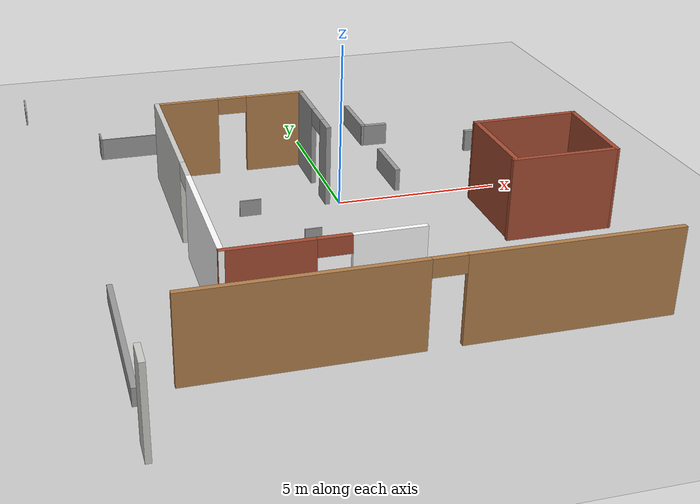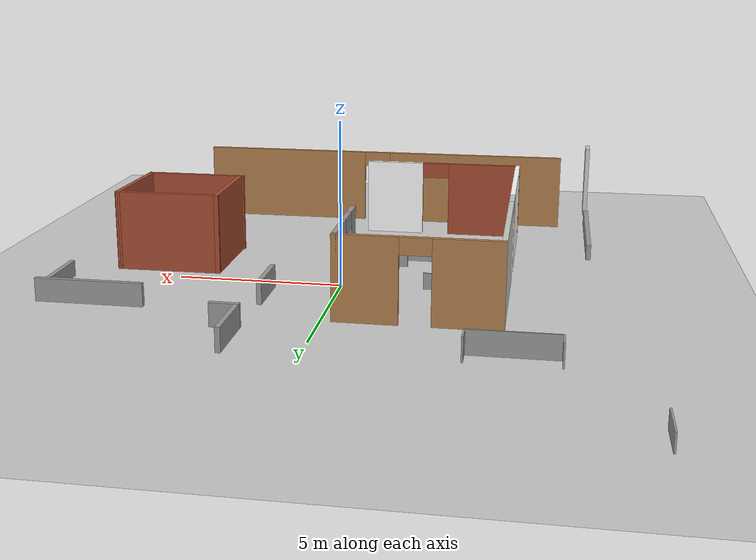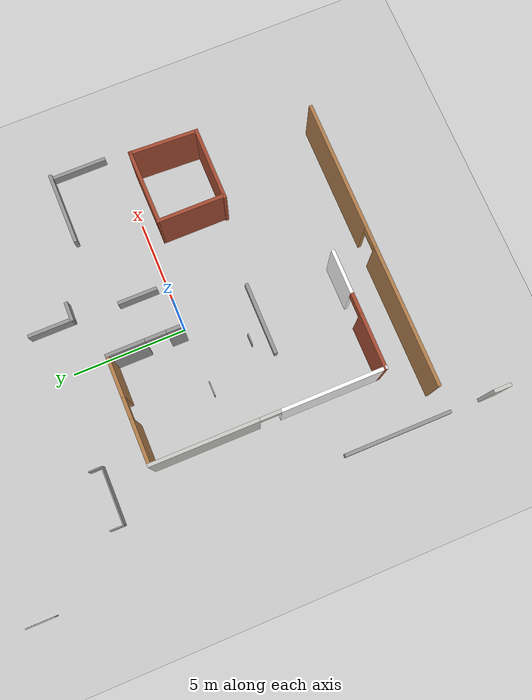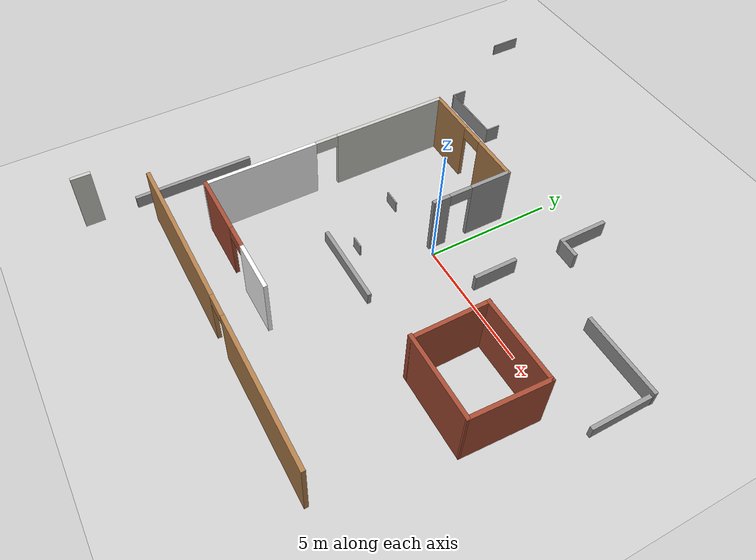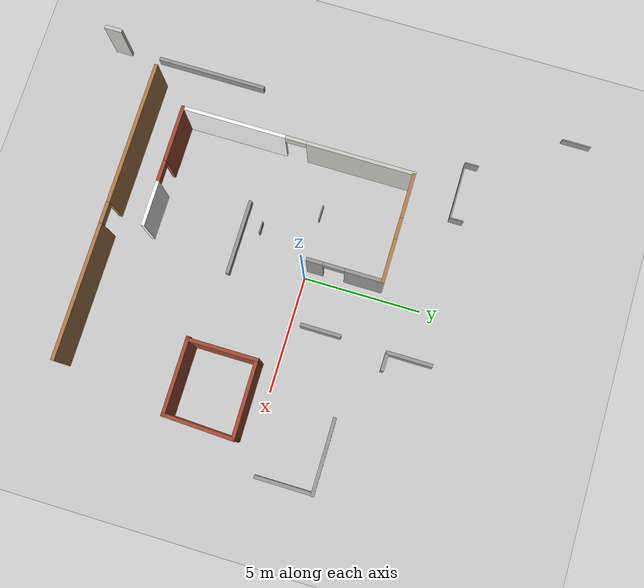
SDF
<sdf version="1.4">
 <world name="default">
  <scene>
   <ambient>0.68 0.68 0.68 1.0</ambient>
   <shadows>false</shadows>
   <sky><clouds><speed>12</speed></clouds></sky>
  </scene>
  <physics type="ode">
   <max_step_size>0.001</max_step_size>
   <real_time_factor>1</real_time_factor>
   <real_time_update_rate>1000</real_time_update_rate>
   <gravity>0 0 -9.8</gravity>
  </physics>
  <include><uri>model://sun</uri></include>
  <include><uri>model://ISCAS_groundplane</uri></include>
  <include><uri>model://academy_wall</uri></include>
  <include><uri>model://add_wall</uri></include>
  <include><uri>model://add_wall2</uri></include>
  <include><uri>model://add_wall4</uri></include>
  <include><uri>model://add_wall5</uri></include>
  <include><uri>model://add_wall6</uri></include>
  <include><uri>model://add_wall7</uri></include>
 </world>
</sdf>

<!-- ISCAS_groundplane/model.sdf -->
<sdf version="1.4">
  <model name="ISCAS_groundplane">
    <static>true</static>
    <link name="link">
      <collision name="collision">
        <geometry>
          <plane>
            <normal>0 0 1</normal>
            <size>50 50</size>
          </plane>
        </geometry>
        <surface>
          <friction>
            <ode>
              <mu>100</mu>
              <mu2>50</mu2>
            </ode>
          </friction>
        </surface>
      </collision>
      <visual name="visual">
        <cast_shadows>false</cast_shadows>
        <geometry>
          <plane>
            <normal>0 0 1</normal>
            <size>50 50</size>
          </plane>
        </geometry>
        <material>
          <script>
            <uri>model://ISCAS_groundplane/materials/scripts</uri>
            <uri>model://ISCAS_groundplane/materials/textures</uri>
            <name>ISCAS_groundplane/Image </name>
          </script>
        </material>
      </visual>
    </link>
  </model>
</sdf>

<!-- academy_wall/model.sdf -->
<sdf version='1.7'>
  <model name='academy_wall'>
    <pose>0.406534 -4.1875 0 0 -0 0</pose>
    <link name='Wall_2'>
      <collision name='Wall_2_Collision'>
        <geometry>
          <box>
            <size>3.25 0.15 2.5</size>
          </box>
        </geometry>
        <pose>0 0 1.25 0 -0 0</pose>
      </collision>
      <visual name='Wall_2_Visual'>
        <pose>0 0 1.25 0 -0 0</pose>
        <geometry>
          <box>
            <size>3.25 0.15 2.5</size>
          </box>
        </geometry>
        <material>
          <script>
            <uri>file://media/materials/scripts/gazebo.material</uri>
            <name>Gazebo/Bricks</name>
          </script>
          <ambient>1 1 1 1</ambient>
        </material>
        <meta>
          <layer>0</layer>
        </meta>
      </visual>
      <pose>5.10347 0.6775 0 0 -0 0</pose>
    </link>
    <link name='Wall_3'>
      <collision name='Wall_3_Collision'>
        <geometry>
          <box>
            <size>3.02251 0.15 2.5</size>
          </box>
        </geometry>
        <pose>0 0 1.25 0 -0 0</pose>
      </collision>
      <visual name='Wall_3_Visual'>
        <pose>0 0 1.25 0 -0 0</pose>
        <geometry>
          <box>
            <size>3.02251 0.15 2.5</size>
          </box>
        </geometry>
        <material>
          <script>
            <uri>file://media/materials/scripts/gazebo.material</uri>
            <name>Gazebo/Bricks</name>
          </script>
          <ambient>1 1 1 1</ambient>
        </material>
        <meta>
          <layer>0</layer>
        </meta>
      </visual>
      <pose>6.71347 2.1125 0 0 -0 1.52901</pose>
    </link>
    <link name='Wall_4'>
      <collision name='Wall_4_Collision'>
        <geometry>
          <box>
            <size>3.31014 0.15 2.5</size>
          </box>
        </geometry>
        <pose>0 0 1.25 0 -0 0</pose>
      </collision>
      <visual name='Wall_4_Visual'>
        <pose>0 0 1.25 0 -0 0</pose>
        <geometry>
          <box>
            <size>3.31014 0.15 2.5</size>
          </box>
        </geometry>
        <material>
          <script>
            <uri>file://media/materials/scripts/gazebo.material</uri>
            <name>Gazebo/Bricks</name>
          </script>
          <ambient>1 1 1 1</ambient>
        </material>
        <meta>
          <layer>0</layer>
        </meta>
      </visual>
      <pose>5.18347 3.5325 0 0 -0 -3.1321</pose>
    </link>
    <link name='Wall_5'>
      <collision name='Wall_5_Collision'>
        <geometry>
          <box>
            <size>3 0.15 2.5</size>
          </box>
        </geometry>
        <pose>0 0 1.25 0 -0 0</pose>
      </collision>
      <visual name='Wall_5_Visual'>
        <pose>0 0 1.25 0 -0 0</pose>
        <geometry>
          <box>
            <size>3 0.15 2.5</size>
          </box>
        </geometry>
        <material>
          <script>
            <uri>file://media/materials/scripts/gazebo.material</uri>
            <name>Gazebo/Bricks</name>
          </script>
          <ambient>1 1 1 1</ambient>
        </material>
        <meta>
          <layer>0</layer>
        </meta>
      </visual>
      <pose>3.60347 2.1025 0 0 -0 -1.5708</pose>
    </link>
    <link name='Wall_9'>
      <pose>-0.476534 -4.1125 0 0 -0 0</pose>
      <visual name='Wall_9_Visual_0'>
        <pose>-3.3175 0 1.25 0 -0 0</pose>
        <geometry>
          <box>
            <size>6.115 0.15 2.5</size>
          </box>
        </geometry>
        <material>
          <script>
            <uri>file://media/materials/scripts/gazebo.material</uri>
            <name>Gazebo/Wood</name>
          </script>
          <ambient>1 1 1 1</ambient>
        </material>
        <meta>
          <layer>0</layer>
        </meta>
      </visual>
      <collision name='Wall_9_Collision_0'>
        <geometry>
          <box>
            <size>6.115 0.15 2.5</size>
          </box>
        </geometry>
        <pose>-3.3175 0 1.25 0 -0 0</pose>
      </collision>
      <visual name='Wall_9_Visual_1'>
        <pose>3.5075 0 1.25 0 -0 0</pose>
        <geometry>
          <box>
            <size>5.735 0.15 2.5</size>
          </box>
        </geometry>
        <material>
          <script>
            <uri>file://media/materials/scripts/gazebo.material</uri>
            <name>Gazebo/Wood</name>
          </script>
          <ambient>1 1 1 1</ambient>
        </material>
        <meta>
          <layer>0</layer>
        </meta>
      </visual>
      <collision name='Wall_9_Collision_1'>
        <geometry>
          <box>
            <size>5.735 0.15 2.5</size>
          </box>
        </geometry>
        <pose>3.5075 0 1.25 0 -0 0</pose>
      </collision>
      <visual name='Wall_9_Visual_2'>
        <pose>0.19 0 2.25 0 -0 0</pose>
        <geometry>
          <box>
            <size>0.9 0.15 0.5</size>
          </box>
        </geometry>
        <material>
          <script>
            <uri>file://media/materials/scripts/gazebo.material</uri>
            <name>Gazebo/Wood</name>
          </script>
          <ambient>1 1 1 1</ambient>
        </material>
        <meta>
          <layer>0</layer>
        </meta>
      </visual>
      <collision name='Wall_9_Collision_2'>
        <geometry>
          <box>
            <size>0.9 0.15 0.5</size>
          </box>
        </geometry>
        <pose>0.19 0 2.25 0 -0 0</pose>
      </collision>
    </link>
    <static>1</static>
  </model>
</sdf>

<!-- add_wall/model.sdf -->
<sdf version='1.7'>
  <model name='add_wall'>
    <pose>-3.7525 -5.4475 0 0 -0 0</pose>
    <link name='Wall_2'>
      <collision name='Wall_2_Collision'>
        <geometry>
          <box>
            <size>0.75 0.15 2.5</size>
          </box>
        </geometry>
        <pose>0 0 1.25 0 -0 0</pose>
      </collision>
      <visual name='Wall_2_Visual'>
        <pose>0 0 1.25 0 -0 0</pose>
        <geometry>
          <box>
            <size>0.75 0.15 2.5</size>
          </box>
        </geometry>
        <material>
          <script>
            <uri>file://media/materials/scripts/gazebo.material</uri>
            <name>Gazebo/CeilingTiled</name>
          </script>
          <ambient>1 1 1 1</ambient>
        </material>
        <meta>
          <layer>0</layer>
        </meta>
      </visual>
      <pose>-3.6775 -5.0725 0 0 -0 -1.5708</pose>
    </link>
    <static>1</static>
  </model>
</sdf>

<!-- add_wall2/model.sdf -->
<sdf version='1.7'>
  <model name='add_wall2'>
    <pose>-2.43 -1.735 0 0 -0 0</pose>
    <link name='Wall_3'>
      <pose>0 -4.925 0 0 -0 3.14159</pose>
      <visual name='Wall_3_Visual_0'>
        <pose>-1.66285 0 1.25 0 -0 0</pose>
        <geometry>
          <box>
            <size>1.92429 0.15 2.5</size>
          </box>
        </geometry>
        <material>
          <script>
            <uri>model://add_wall2/materials/scripts</uri>
            <uri>model://add_wall2/materials/textures</uri>
            <name>add_wall2/Image </name>
          </script>
          <ambient>1 1 1 1</ambient>
        </material>
        <meta>
          <layer>0</layer>
        </meta>
      </visual>
      <collision name='Wall_3_Collision_0'>
        <geometry>
          <box>
            <size>1.92429 0.15 2.5</size>
          </box>
        </geometry>
        <pose>-1.66285 0 1.25 0 -0 0</pose>
      </collision>
      <visual name='Wall_3_Visual_1'>
        <pose>1.41215 0 1.25 0 -0 0</pose>
        <geometry>
          <box>
            <size>2.42571 0.15 2.5</size>
          </box>
        </geometry>
        <material>
          <script>
            <uri>file://media/materials/scripts/gazebo.material</uri>
            <name>Gazebo/Bricks</name>
          </script>
          <ambient>1 1 1 1</ambient>
        </material>
        <meta>
          <layer>0</layer>
        </meta>
      </visual>
      <collision name='Wall_3_Collision_1'>
        <geometry>
          <box>
            <size>2.42571 0.15 2.5</size>
          </box>
        </geometry>
        <pose>1.41215 0 1.25 0 -0 0</pose>
      </collision>
      <visual name='Wall_3_Visual_2'>
        <pose>-0.250708 0 2.25 0 -0 0</pose>
        <geometry>
          <box>
            <size>0.9 0.15 0.5</size>
          </box>
        </geometry>
        <material>
          <script>
            <uri>file://media/materials/scripts/gazebo.material</uri>
            <name>Gazebo/Bricks</name>
          </script>
          <ambient>1 1 1 1</ambient>
        </material>
        <meta>
          <layer>0</layer>
        </meta>
      </visual>
      <collision name='Wall_3_Collision_2'>
        <geometry>
          <box>
            <size>0.9 0.15 0.5</size>
          </box>
        </geometry>
        <pose>-0.250708 0 2.25 0 -0 0</pose>
      </collision>
    </link>
    <link name='Wall_4'>
      <pose>-2.55 0 0 0 -0 1.5708</pose>
      <visual name='Wall_4_Visual_0'>
        <pose>-2.76483 0 1.25 0 -0 0</pose>
        <geometry>
          <box>
            <size>4.47035 0.15 2.5</size>
          </box>
        </geometry>
        <material>
          <script>
            <uri>model://add_wall2/materials/scripts</uri>
            <uri>model://add_wall2/materials/textures</uri>
            <name>horse/Image </name>
          </script>
          <ambient>1 1 1 1</ambient>
        </material>
        <meta>
          <layer>0</layer>
        </meta>
      </visual>
      <collision name='Wall_4_Collision_0'>
        <geometry>
          <box>
            <size>4.47035 0.15 2.5</size>
          </box>
        </geometry>
        <pose>-2.76483 0 1.25 0 -0 0</pose>
      </collision>
      <visual name='Wall_4_Visual_1'>
        <pose>2.68517 0 1.25 0 -0 0</pose>
        <geometry>
          <box>
            <size>4.62965 0.15 2.5</size>
          </box>
        </geometry>
        <material>
          <script>
            <uri>file://media/materials/scripts/gazebo.material</uri>
            <name>Gazebo/CeilingTiled</name>
          </script>
          <ambient>1 1 1 1</ambient>
        </material>
        <meta>
          <layer>0</layer>
        </meta>
      </visual>
      <collision name='Wall_4_Collision_1'>
        <geometry>
          <box>
            <size>4.62965 0.15 2.5</size>
          </box>
        </geometry>
        <pose>2.68517 0 1.25 0 -0 0</pose>
      </collision>
      <visual name='Wall_4_Visual_2'>
        <pose>-0.079655 0 2.25 0 -0 0</pose>
        <geometry>
          <box>
            <size>0.9 0.15 0.5</size>
          </box>
        </geometry>
        <material>
          <script>
            <uri>file://media/materials/scripts/gazebo.material</uri>
            <name>Gazebo/CeilingTiled</name>
          </script>
          <ambient>1 1 1 1</ambient>
        </material>
        <meta>
          <layer>0</layer>
        </meta>
      </visual>
      <collision name='Wall_4_Collision_2'>
        <geometry>
          <box>
            <size>0.9 0.15 0.5</size>
          </box>
        </geometry>
        <pose>-0.079655 0 2.25 0 -0 0</pose>
      </collision>
    </link>
    <link name='Wall_5'>
      <pose>-0.25 4.925 0 0 -0 0</pose>
      <visual name='Wall_5_Visual_0'>
        <pose>-1.38036 0 1.25 0 -0 0</pose>
        <geometry>
          <box>
            <size>1.98928 0.15 2.5</size>
          </box>
        </geometry>
        <material>
          <script>
            <uri>file://media/materials/scripts/gazebo.material</uri>
            <name>Gazebo/Wood</name>
          </script>
          <ambient>1 1 1 1</ambient>
        </material>
        <meta>
          <layer>0</layer>
        </meta>
      </visual>
      <collision name='Wall_5_Collision_0'>
        <geometry>
          <box>
            <size>1.98928 0.15 2.5</size>
          </box>
        </geometry>
        <pose>-1.38036 0 1.25 0 -0 0</pose>
      </collision>
      <visual name='Wall_5_Visual_1'>
        <pose>1.44464 0 1.25 0 -0 0</pose>
        <geometry>
          <box>
            <size>1.86072 0.15 2.5</size>
          </box>
        </geometry>
        <material>
          <script>
            <uri>file://media/materials/scripts/gazebo.material</uri>
            <name>Gazebo/Wood</name>
          </script>
          <ambient>1 1 1 1</ambient>
        </material>
        <meta>
          <layer>0</layer>
        </meta>
      </visual>
      <collision name='Wall_5_Collision_1'>
        <geometry>
          <box>
            <size>1.86072 0.15 2.5</size>
          </box>
        </geometry>
        <pose>1.44464 0 1.25 0 -0 0</pose>
      </collision>
      <visual name='Wall_5_Visual_2'>
        <pose>0.064283 0 2.25 0 -0 0</pose>
        <geometry>
          <box>
            <size>0.9 0.15 0.5</size>
          </box>
        </geometry>
        <material>
          <script>
            <uri>file://media/materials/scripts/gazebo.material</uri>
            <name>Gazebo/Wood</name>
          </script>
          <ambient>1 1 1 1</ambient>
        </material>
        <meta>
          <layer>0</layer>
        </meta>
      </visual>
      <collision name='Wall_5_Collision_2'>
        <geometry>
          <box>
            <size>0.9 0.15 0.5</size>
          </box>
        </geometry>
        <pose>0.064283 0 2.25 0 -0 0</pose>
      </collision>
    </link>
    <link name='Wall_6'>
      <pose>2.05 3.375 0 0 -0 -1.5708</pose>
      <visual name='Wall_6_Visual_0'>
        <pose>-0.797985 0 1.25 0 -0 0</pose>
        <geometry>
          <box>
            <size>1.65403 0.15 2.5</size>
          </box>
        </geometry>
        <material>
          <script>
            <uri>file://media/materials/scripts/gazebo.material</uri>
            <name>Gazebo/Grey</name>
          </script>
          <ambient>1 1 1 1</ambient>
        </material>
        <meta>
          <layer>0</layer>
        </meta>
      </visual>
      <collision name='Wall_6_Collision_0'>
        <geometry>
          <box>
            <size>1.65403 0.15 2.5</size>
          </box>
        </geometry>
        <pose>-0.797985 0 1.25 0 -0 0</pose>
      </collision>
      <visual name='Wall_6_Visual_1'>
        <pose>1.27702 0 1.25 0 -0 0</pose>
        <geometry>
          <box>
            <size>0.69597 0.15 2.5</size>
          </box>
        </geometry>
        <material>
          <script>
            <uri>file://media/materials/scripts/gazebo.material</uri>
            <name>Gazebo/Grey</name>
          </script>
          <ambient>1 1 1 1</ambient>
        </material>
        <meta>
          <layer>0</layer>
        </meta>
      </visual>
      <collision name='Wall_6_Collision_1'>
        <geometry>
          <box>
            <size>0.69597 0.15 2.5</size>
          </box>
        </geometry>
        <pose>1.27702 0 1.25 0 -0 0</pose>
      </collision>
      <visual name='Wall_6_Visual_2'>
        <pose>0.47903 0 2.25 0 -0 0</pose>
        <geometry>
          <box>
            <size>0.9 0.15 0.5</size>
          </box>
        </geometry>
        <material>
          <script>
            <uri>file://media/materials/scripts/gazebo.material</uri>
            <name>Gazebo/Grey</name>
          </script>
          <ambient>1 1 1 1</ambient>
        </material>
        <meta>
          <layer>0</layer>
        </meta>
      </visual>
      <collision name='Wall_6_Collision_2'>
        <geometry>
          <box>
            <size>0.9 0.15 0.5</size>
          </box>
        </geometry>
        <pose>0.47903 0 2.25 0 -0 0</pose>
      </collision>
    </link>
    <static>1</static>
  </model>
</sdf>

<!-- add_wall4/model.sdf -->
<sdf version='1.7'>
  <model name='add_wall4'>
    <pose>-0.206571 5.057 0 0 -0 0</pose>
    <link name='Wall_11'>
      <collision name='Wall_11_Collision'>
        <geometry>
          <box>
            <size>0.6 0.05 0.7</size>
          </box>
        </geometry>
        <pose>0 0 0.35 0 -0 0</pose>
      </collision>
      <visual name='Wall_11_Visual'>
        <pose>0 0 0.35 0 -0 0</pose>
        <geometry>
          <box>
            <size>0.6 0.05 0.7</size>
          </box>
        </geometry>
        <material>
          <script>
            <uri>file://media/materials/scripts/gazebo.material</uri>
            <name>Gazebo/Grey</name>
          </script>
          <ambient>1 1 1 1</ambient>
        </material>
        <meta>
          <layer>0</layer>
        </meta>
      </visual>
      <pose>-6.39343 0.368 0 0 -0 1.5708</pose>
    </link>
    <link name='Wall_14'>
      <collision name='Wall_14_Collision'>
        <geometry>
          <box>
            <size>3.25 0.15 0.7</size>
          </box>
        </geometry>
        <pose>0 0 0.35 0 -0 0</pose>
      </collision>
      <visual name='Wall_14_Visual'>
        <pose>0 0 0.35 0 -0 0</pose>
        <geometry>
          <box>
            <size>3.25 0.15 0.7</size>
          </box>
        </geometry>
        <material>
          <script>
            <uri>file://media/materials/scripts/gazebo.material</uri>
            <name>Gazebo/Grey</name>
          </script>
          <ambient>1 1 1 1</ambient>
        </material>
        <meta>
          <layer>0</layer>
        </meta>
      </visual>
      <pose>7.03857 -2.17847 0 0 -0 0</pose>
    </link>
    <link name='Wall_16'>
      <collision name='Wall_16_Collision'>
        <geometry>
          <box>
            <size>2.5 0.15 0.5</size>
          </box>
        </geometry>
        <pose>0 0 0.25 0 -0 0</pose>
      </collision>
      <visual name='Wall_16_Visual'>
        <pose>0 0 0.25 0 -0 0</pose>
        <geometry>
          <box>
            <size>2.5 0.15 0.5</size>
          </box>
        </geometry>
        <material>
          <script>
            <uri>file://media/materials/scripts/gazebo.material</uri>
            <name>Gazebo/Grey</name>
          </script>
          <ambient>1 1 1 1</ambient>
        </material>
        <meta>
          <layer>0</layer>
        </meta>
      </visual>
      <pose>8.57257 -3.394 0 0 -0 1.5708</pose>
    </link>
    <link name='Wall_18'>
      <collision name='Wall_18_Collision'>
        <geometry>
          <box>
            <size>1.25 0.05 0.5</size>
          </box>
        </geometry>
        <pose>0 0 0.25 0 -0 0</pose>
      </collision>
      <visual name='Wall_18_Visual'>
        <pose>0 0 0.25 0 -0 0</pose>
        <geometry>
          <box>
            <size>1.25 0.05 0.5</size>
          </box>
        </geometry>
        <material>
          <script>
            <uri>file://media/materials/scripts/gazebo.material</uri>
            <name>Gazebo/Grey</name>
          </script>
          <ambient>1 1 1 1</ambient>
        </material>
        <meta>
          <layer>0</layer>
        </meta>
      </visual>
      <pose>-8.63857 4.432 0 0 -0 1.5708</pose>
    </link>
    <link name='Wall_7'>
      <collision name='Wall_7_Collision'>
        <geometry>
          <box>
            <size>2.55 0.05 0.7</size>
          </box>
        </geometry>
        <pose>0 0 0.35 0 -0 0</pose>
      </collision>
      <visual name='Wall_7_Visual'>
        <pose>0 0 0.35 0 -0 0</pose>
        <geometry>
          <box>
            <size>2.55 0.05 0.7</size>
          </box>
        </geometry>
        <material>
          <script>
            <uri>file://media/materials/scripts/gazebo.material</uri>
            <name>Gazebo/Grey</name>
          </script>
          <ambient>1 1 1 1</ambient>
        </material>
        <meta>
          <layer>0</layer>
        </meta>
      </visual>
      <pose>-5.14343 0.093 0 0 -0 3.14159</pose>
    </link>
    <link name='Wall_9'>
      <collision name='Wall_9_Collision'>
        <geometry>
          <box>
            <size>0.6 0.05 0.7</size>
          </box>
        </geometry>
        <pose>0 0 0.35 0 -0 0</pose>
      </collision>
      <visual name='Wall_9_Visual'>
        <pose>0 0 0.35 0 -0 0</pose>
        <geometry>
          <box>
            <size>0.6 0.05 0.7</size>
          </box>
        </geometry>
        <material>
          <script>
            <uri>file://media/materials/scripts/gazebo.material</uri>
            <name>Gazebo/Grey</name>
          </script>
          <ambient>1 1 1 1</ambient>
        </material>
        <meta>
          <layer>0</layer>
        </meta>
      </visual>
      <pose>-3.89343 0.368 0 0 -0 1.5708</pose>
    </link>
    <static>1</static>
  </model>
</sdf>

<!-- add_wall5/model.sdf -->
<sdf version='1.7'>
  <model name='add_wall5'>
    <pose>-2.3113 -1.36 0 0 -0 0</pose>
    <link name='Wall_1'>
      <collision name='Wall_1_Collision'>
        <geometry>
          <box>
            <size>0.86487 0.15 0.7</size>
          </box>
        </geometry>
        <pose>0 0 0.35 0 -0 0</pose>
      </collision>
      <visual name='Wall_1_Visual'>
        <pose>0 0 0.35 0 -0 0</pose>
        <geometry>
          <box>
            <size>0.86487 0.15 0.7</size>
          </box>
        </geometry>
        <material>
          <script>
            <uri>file://media/materials/scripts/gazebo.material</uri>
            <name>Gazebo/Grey</name>
          </script>
          <ambient>1 1 1 1</ambient>
        </material>
        <meta>
          <layer>0</layer>
        </meta>
      </visual>
      <pose>4.75464 5.54068 0 0 -0 -0.023278</pose>
    </link>
    <link name='Wall_3'>
      <collision name='Wall_3_Collision'>
        <geometry>
          <box>
            <size>2 0.15 0.7</size>
          </box>
        </geometry>
        <pose>0 0 0.35 0 -0 0</pose>
      </collision>
      <visual name='Wall_3_Visual'>
        <pose>0 0 0.35 0 -0 0</pose>
        <geometry>
          <box>
            <size>2 0.15 0.7</size>
          </box>
        </geometry>
        <material>
          <script>
            <uri>file://media/materials/scripts/gazebo.material</uri>
            <name>Gazebo/Grey</name>
          </script>
          <ambient>1 1 1 1</ambient>
        </material>
        <meta>
          <layer>0</layer>
        </meta>
      </visual>
      <pose>4.3973 6.474 0 0 -0 1.5708</pose>
    </link>
    <link name='Wall_5'>
      <collision name='Wall_5_Collision'>
        <geometry>
          <box>
            <size>1.75 0.15 0.7</size>
          </box>
        </geometry>
        <pose>0 0 0.35 0 -0 0</pose>
      </collision>
      <visual name='Wall_5_Visual'>
        <pose>0 0 0.35 0 -0 0</pose>
        <geometry>
          <box>
            <size>1.75 0.15 0.7</size>
          </box>
        </geometry>
        <material>
          <script>
            <uri>file://media/materials/scripts/gazebo.material</uri>
            <name>Gazebo/Grey</name>
          </script>
          <ambient>1 1 1 1</ambient>
        </material>
        <meta>
          <layer>0</layer>
        </meta>
      </visual>
      <pose>4.30252 2.661 0 0 -0 -1.5708</pose>
    </link>
    <link name='Wall_7'>
      <collision name='Wall_7_Collision'>
        <geometry>
          <box>
            <size>4.75 0.15 0.5</size>
          </box>
        </geometry>
        <pose>0 0 0.25 0 -0 0</pose>
      </collision>
      <visual name='Wall_7_Visual'>
        <pose>0 0 0.25 0 -0 0</pose>
        <geometry>
          <box>
            <size>4.75 0.15 0.5</size>
          </box>
        </geometry>
        <material>
          <script>
            <uri>file://media/materials/scripts/gazebo.material</uri>
            <name>Gazebo/Grey</name>
          </script>
          <ambient>1 1 1 1</ambient>
        </material>
        <meta>
          <layer>0</layer>
        </meta>
      </visual>
      <pose>-5.1137 -5.099 0 0 -0 1.5708</pose>
    </link>
    <static>1</static>
  </model>
</sdf>

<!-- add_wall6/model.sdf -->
<sdf version='1.7'>
  <model name='add_wall6'>
    <pose>-0.83 -1.6025 0 0 -0 0</pose>
    <link name='Wall_3'>
      <collision name='Wall_3_Collision'>
        <geometry>
          <box>
            <size>3.25 0.15 0.5</size>
          </box>
        </geometry>
        <pose>0 0 0.25 0 -0 0</pose>
      </collision>
      <visual name='Wall_3_Visual'>
        <pose>0 0 0.25 0 -0 0</pose>
        <geometry>
          <box>
            <size>3.25 0.15 0.5</size>
          </box>
        </geometry>
        <material>
          <script>
            <uri>file://media/materials/scripts/gazebo.material</uri>
            <name>Gazebo/Grey</name>
          </script>
          <ambient>1 1 1 1</ambient>
        </material>
        <meta>
          <layer>0</layer>
        </meta>
      </visual>
      <pose>-0 -1.5275 0 0 -0 0</pose>
    </link>
    <static>1</static>
  </model>
</sdf>

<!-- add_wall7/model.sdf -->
<sdf version='1.7'>
  <model name='add_wall7'>
    <pose>-1.56611 -1.1952 0 0 -0 0</pose>
    <link name='Wall_0'>
      <collision name='Wall_0_Collision'>
        <geometry>
          <box>
            <size>0.65 0.05 0.5</size>
          </box>
        </geometry>
        <pose>0 0 0.25 0 -0 0</pose>
      </collision>
      <visual name='Wall_0_Visual'>
        <pose>0 0 0.25 0 -0 0</pose>
        <geometry>
          <box>
            <size>0.65 0.05 0.5</size>
          </box>
        </geometry>
        <material>
          <script>
            <uri>file://media/materials/scripts/gazebo.material</uri>
            <name>Gazebo/Grey</name>
          </script>
          <ambient>1 1 1 1</ambient>
        </material>
        <meta>
          <layer>0</layer>
        </meta>
      </visual>
      <pose>-1.24111 1.06768 0 0 -0 0</pose>
    </link>
    <link name='Wall_2'>
      <collision name='Wall_2_Collision'>
        <geometry>
          <box>
            <size>0.5 0.05 0.5</size>
          </box>
        </geometry>
        <pose>0 0 0.25 0 -0 0</pose>
      </collision>
      <visual name='Wall_2_Visual'>
        <pose>0 0 0.25 0 -0 0</pose>
        <geometry>
          <box>
            <size>0.5 0.05 0.5</size>
          </box>
        </geometry>
        <material>
          <script>
            <uri>file://media/materials/scripts/gazebo.material</uri>
            <name>Gazebo/Grey</name>
          </script>
          <ambient>1 1 1 1</ambient>
        </material>
        <meta>
          <layer>0</layer>
        </meta>
      </visual>
      <pose>0.075984 -1.1702 0 0 -0 0</pose>
    </link>
    <static>1</static>
  </model>
</sdf>
